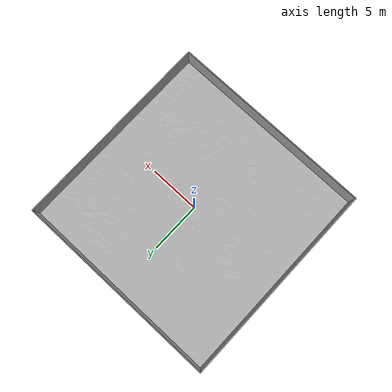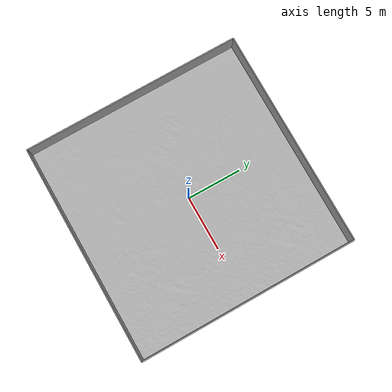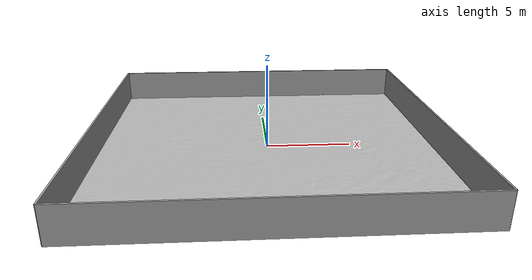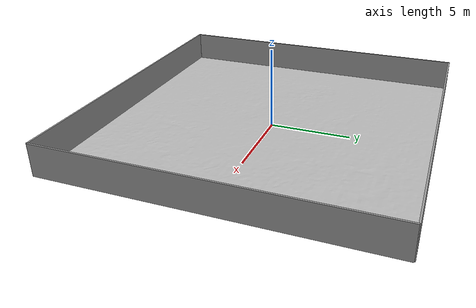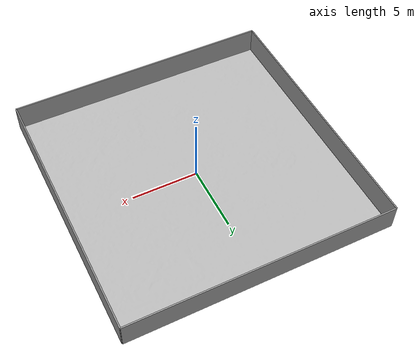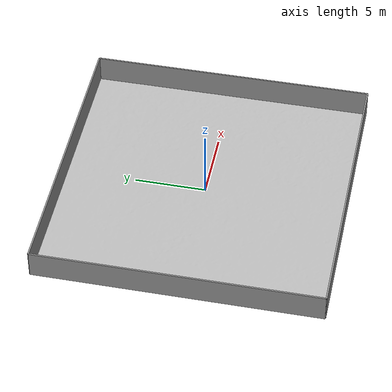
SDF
<sdf version="1.6">
 <world name="mining_world">
  <plugin filename="libignition-gazebo6-physics-system.so" name="ignition::gazebo::systems::Physics"/>
  <plugin filename="libignition-gazebo6-scene-broadcaster-system.so" name="ignition::gazebo::systems::SceneBroadcaster"/>
  <plugin filename="libignition-gazebo6-user-commands-system.so" name="ignition::gazebo::systems::UserCommands"/>
  <plugin filename="libignition-gazebo6-sensors-system.so" name="ignition::gazebo::systems::Sensors">
   <render_engine>ogre2</render_engine>
  </plugin>
  <plugin filename="libignition-gazebo6-imu-system.so" name="ignition::gazebo::systems::Imu">
   <render_engine>ogre2</render_engine>
  </plugin>
  <plugin filename="libignition-gazebo6-navsat-system.so" name="ignition::gazebo::systems::NavSat">
   <render_engine>ogre2</render_engine>
  </plugin>
  <spherical_coordinates>
   <surface_model>EARTH_WGS84</surface_model>
   <latitude_deg>38.150000</latitude_deg>
   <longitude_deg>-122.460000</longitude_deg>
   <elevation>0.0</elevation>
   <heading_deg>0.0</heading_deg>
  </spherical_coordinates>
  <model name="sun">
   <static>true</static>
   <link name="link">
    <light name="sun_light" type="directional">
     <direction>-0.5 0.5 -1</direction>
     <diffuse>1 1 1 1</diffuse>
     <specular>0.1 0.1 0.1 1</specular>
    </light>
   </link>
  </model>
  <include><uri>model://mining_terrain_overlay</uri></include>
  <include><name>front_wall</name><uri>model://wall</uri><pose>10 0 1 0 0 0</pose></include>
  <include><name>back_wall</name><uri>model://wall</uri><pose>-10 0 1 0 0 0</pose></include>
  <include><name>left_wall</name><uri>model://wall</uri><pose>0 10 1 0 0 1.5708</pose></include>
  <include><name>right_wall</name><uri>model://wall</uri><pose>0 -10 1 0 0 1.5708</pose></include>
  <model name="nav_overlay">
   <static>true</static>
   <pose>0 0 0.05 0 0 0</pose>
   <link name="overlay_link">
    <collision name="overlay_collision">
     <geometry><plane><normal>0 0 1</normal><size>20 20</size></plane></geometry>
    </collision>
   </link>
  </model>
 </world>
</sdf>

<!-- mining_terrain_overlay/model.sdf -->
<sdf version="1.6">
  <model name="mining_terrain_overlay">
    <static>true</static>
    <link name="link">
      <visual name="visual">
        <geometry>
          <mesh>
            <uri>model://mining_terrain_overlay/meshes/mining_terrain_scaled_reversed_clean.dae</uri>
            <scale>1 1 1</scale> <!-- Adjust as needed -->
          </mesh>
        </geometry>
      </visual>

      <collision name="collision">
        <geometry>
          <mesh>
            <uri>model://mining_terrain_overlay/meshes/mining_terrain_scaled_reversed_clean.dae</uri>
            <scale>1 1 1</scale>
          </mesh>
        </geometry>
      </collision>
    </link>
  </model>
</sdf>

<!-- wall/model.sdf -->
<sdf version="1.6">
  <model name="wall">
    <static>true</static>
    <link name="link">
      <collision name="collision">
        <geometry>
          <box>
            <size>0.1 20 2</size> <!-- Thin wall: 0.1m thick, 20m long, 2m tall -->
          </box>
        </geometry>
      </collision>
      <visual name="visual">
        <geometry>
          <box>
            <size>0.1 20 2</size>
          </box>
        </geometry>
        <material>
          <ambient>0.6 0.6 0.6 1</ambient>
          <diffuse>0.6 0.6 0.6 1</diffuse>
        </material>
      </visual>
    </link>
  </model>
</sdf>
